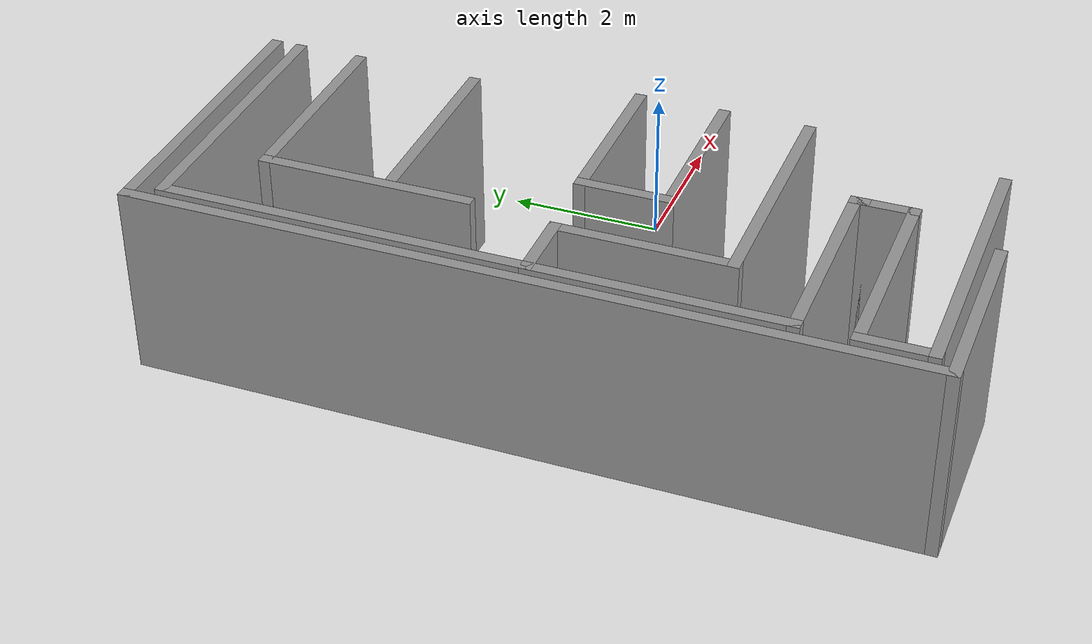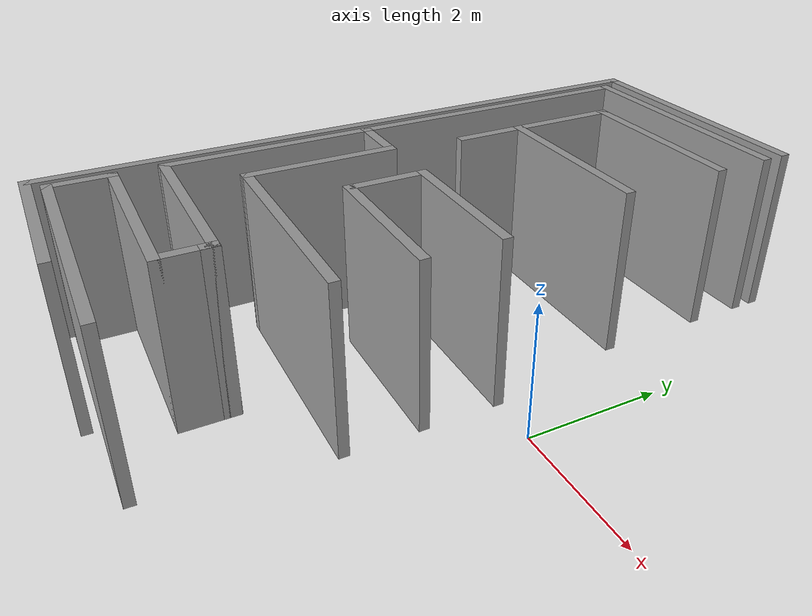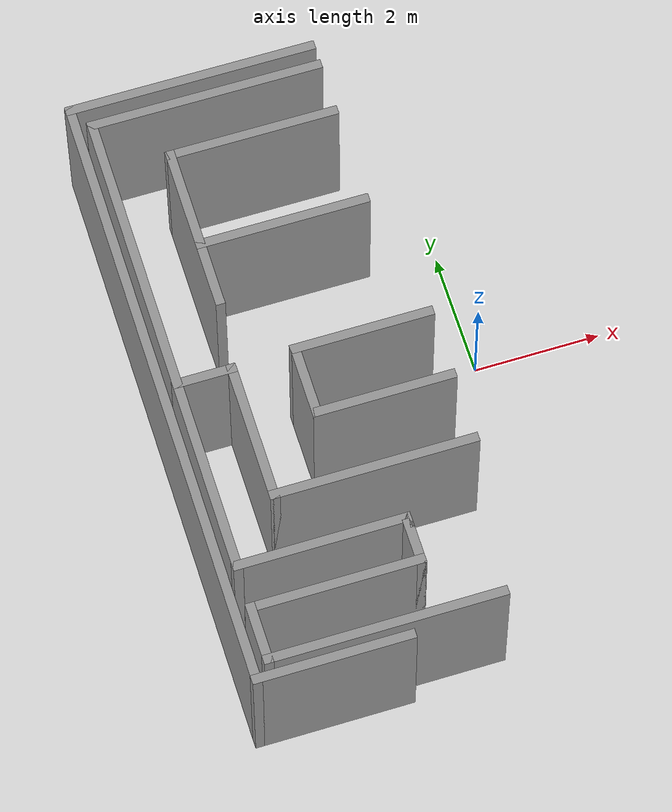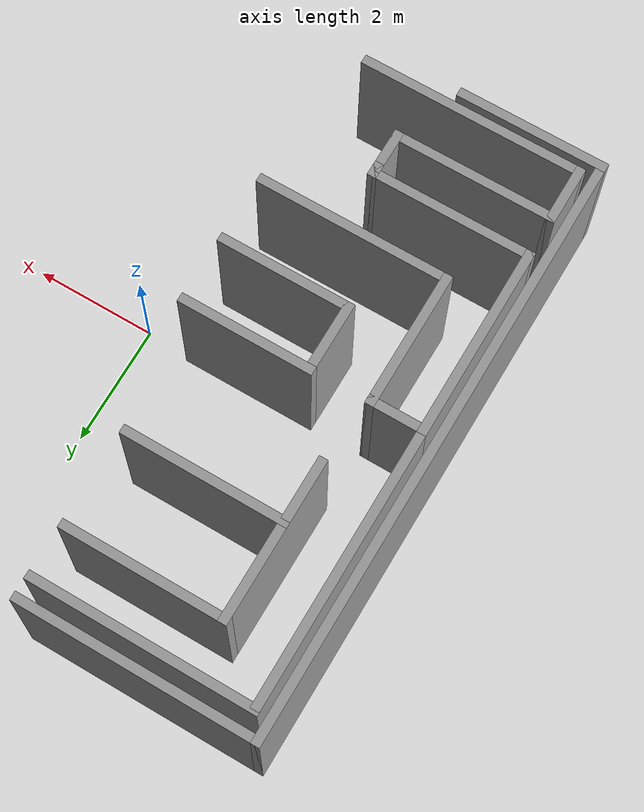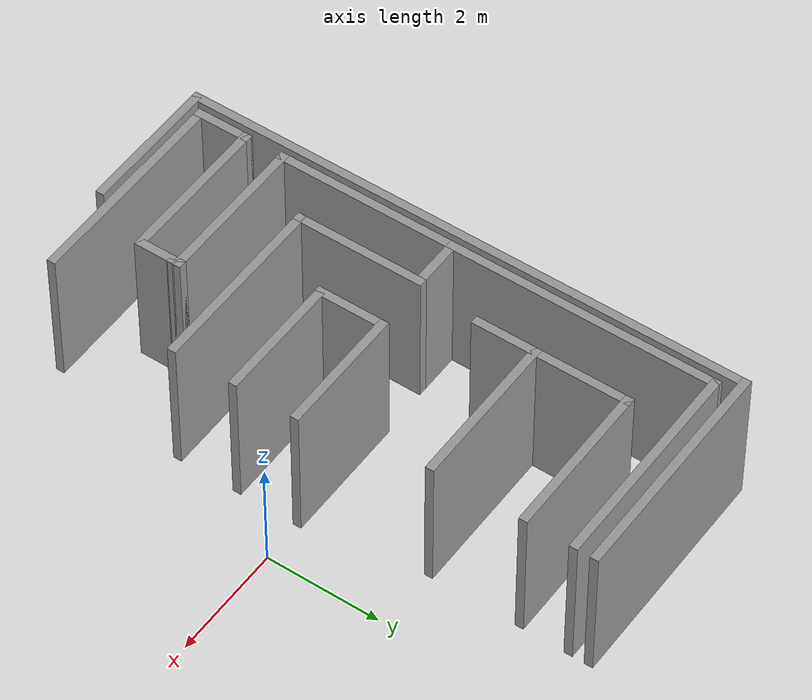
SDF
<sdf version="1.6">
 <model name="maze_final1">
  <link name="Wall_10">
   <pose>-2.95 -4.675 0 0 -0 3.14159</pose>
   <visual name="Wall_10_Visual">
    <pose>0 0 1.25 0 -0 0</pose>
    <geometry><box><size>3.75 0.15 2.5</size></box></geometry>
    <material>
     <script><uri>file://media/materials/scripts/gazebo.material</uri><name>Gazebo/Grey</name></script>
     <ambient>1 1 1 1</ambient>
    </material>
    <meta><layer>0</layer></meta>
   </visual>
   <collision name="Wall_10_Collision">
    <pose>0 0 1.25 0 -0 0</pose>
    <geometry><box><size>3.75 0.15 2.5</size></box></geometry>
    <surface>
     <friction>
      <ode><mu>1</mu><mu2>1</mu2><fdir1>0 0 0</fdir1><slip1>0</slip1><slip2>0</slip2></ode>
      <torsional>
       <coefficient>1</coefficient>
       <patch_radius>0</patch_radius>
       <surface_radius>0</surface_radius>
       <use_patch_radius>1</use_patch_radius>
       <ode><slip>0</slip></ode>
      </torsional>
     </friction>
     <bounce><restitution_coefficient>0</restitution_coefficient><threshold>1e+06</threshold></bounce>
     <contact>
      <collide_without_contact>0</collide_without_contact>
      <collide_without_contact_bitmask>1</collide_without_contact_bitmask>
      <collide_bitmask>1</collide_bitmask>
      <ode>
       <soft_cfm>0</soft_cfm>
       <soft_erp>0.2</soft_erp>
       <kp>1e+13</kp>
       <kd>1</kd>
       <max_vel>0.01</max_vel>
       <min_depth>0</min_depth>
      </ode>
      <bullet>
       <split_impulse>1</split_impulse>
       <split_impulse_penetration_threshold>-0.01</split_impulse_penetration_threshold>
       <soft_cfm>0</soft_cfm>
       <soft_erp>0.2</soft_erp>
       <kp>1e+13</kp>
       <kd>1</kd>
      </bullet>
     </contact>
    </surface>
   </collision>
  </link>
  <link name="Wall_102">
   <pose>-4.75 2.275 0 0 -0 1.5708</pose>
   <visual name="Wall_102_Visual">
    <pose>0 0 1.25 0 -0 0</pose>
    <geometry><box><size>4.75 0.15 2.5</size></box></geometry>
    <material>
     <script><uri>file://media/materials/scripts/gazebo.material</uri><name>Gazebo/Grey</name></script>
     <ambient>1 1 1 1</ambient>
    </material>
    <meta><layer>0</layer></meta>
   </visual>
   <collision name="Wall_102_Collision">
    <pose>0 0 1.25 0 -0 0</pose>
    <geometry><box><size>4.75 0.15 2.5</size></box></geometry>
    <surface>
     <friction>
      <ode><mu>1</mu><mu2>1</mu2><fdir1>0 0 0</fdir1><slip1>0</slip1><slip2>0</slip2></ode>
      <torsional>
       <coefficient>1</coefficient>
       <patch_radius>0</patch_radius>
       <surface_radius>0</surface_radius>
       <use_patch_radius>1</use_patch_radius>
       <ode><slip>0</slip></ode>
      </torsional>
     </friction>
     <bounce><restitution_coefficient>0</restitution_coefficient><threshold>1e+06</threshold></bounce>
     <contact>
      <collide_without_contact>0</collide_without_contact>
      <collide_without_contact_bitmask>1</collide_without_contact_bitmask>
      <collide_bitmask>1</collide_bitmask>
      <ode>
       <soft_cfm>0</soft_cfm>
       <soft_erp>0.2</soft_erp>
       <kp>1e+13</kp>
       <kd>1</kd>
       <max_vel>0.01</max_vel>
       <min_depth>0</min_depth>
      </ode>
      <bullet>
       <split_impulse>1</split_impulse>
       <split_impulse_penetration_threshold>-0.01</split_impulse_penetration_threshold>
       <soft_cfm>0</soft_cfm>
       <soft_erp>0.2</soft_erp>
       <kp>1e+13</kp>
       <kd>1</kd>
      </bullet>
     </contact>
    </surface>
   </collision>
  </link>
  <link name="Wall_103">
   <pose>-2.95 4.575 0 0 -0 0</pose>
   <visual name="Wall_103_Visual">
    <pose>0 0 1.25 0 -0 0</pose>
    <geometry><box><size>3.75 0.15 2.5</size></box></geometry>
    <material>
     <script><uri>file://media/materials/scripts/gazebo.material</uri><name>Gazebo/Grey</name></script>
     <ambient>1 1 1 1</ambient>
    </material>
    <meta><layer>0</layer></meta>
   </visual>
   <collision name="Wall_103_Collision">
    <pose>0 0 1.25 0 -0 0</pose>
    <geometry><box><size>3.75 0.15 2.5</size></box></geometry>
    <surface>
     <friction>
      <ode><mu>1</mu><mu2>1</mu2><fdir1>0 0 0</fdir1><slip1>0</slip1><slip2>0</slip2></ode>
      <torsional>
       <coefficient>1</coefficient>
       <patch_radius>0</patch_radius>
       <surface_radius>0</surface_radius>
       <use_patch_radius>1</use_patch_radius>
       <ode><slip>0</slip></ode>
      </torsional>
     </friction>
     <bounce><restitution_coefficient>0</restitution_coefficient><threshold>1e+06</threshold></bounce>
     <contact>
      <collide_without_contact>0</collide_without_contact>
      <collide_without_contact_bitmask>1</collide_without_contact_bitmask>
      <collide_bitmask>1</collide_bitmask>
      <ode>
       <soft_cfm>0</soft_cfm>
       <soft_erp>0.2</soft_erp>
       <kp>1e+13</kp>
       <kd>1</kd>
       <max_vel>0.01</max_vel>
       <min_depth>0</min_depth>
      </ode>
      <bullet>
       <split_impulse>1</split_impulse>
       <split_impulse_penetration_threshold>-0.01</split_impulse_penetration_threshold>
       <soft_cfm>0</soft_cfm>
       <soft_erp>0.2</soft_erp>
       <kp>1e+13</kp>
       <kd>1</kd>
      </bullet>
     </contact>
    </surface>
   </collision>
  </link>
  <link name="Wall_107">
   <pose>-2.45 3.725 0 0 -0 3.14159</pose>
   <visual name="Wall_107_Visual">
    <pose>0 0 1.25 0 -0 0</pose>
    <geometry><box><size>2.75 0.15 2.5</size></box></geometry>
    <material>
     <script><uri>file://media/materials/scripts/gazebo.material</uri><name>Gazebo/Grey</name></script>
     <ambient>1 1 1 1</ambient>
    </material>
    <meta><layer>0</layer></meta>
   </visual>
   <collision name="Wall_107_Collision">
    <pose>0 0 1.25 0 -0 0</pose>
    <geometry><box><size>2.75 0.15 2.5</size></box></geometry>
    <surface>
     <friction>
      <ode><mu>1</mu><mu2>1</mu2><fdir1>0 0 0</fdir1><slip1>0</slip1><slip2>0</slip2></ode>
      <torsional>
       <coefficient>1</coefficient>
       <patch_radius>0</patch_radius>
       <surface_radius>0</surface_radius>
       <use_patch_radius>1</use_patch_radius>
       <ode><slip>0</slip></ode>
      </torsional>
     </friction>
     <bounce><restitution_coefficient>0</restitution_coefficient><threshold>1e+06</threshold></bounce>
     <contact>
      <collide_without_contact>0</collide_without_contact>
      <collide_without_contact_bitmask>1</collide_without_contact_bitmask>
      <collide_bitmask>1</collide_bitmask>
      <ode>
       <soft_cfm>0</soft_cfm>
       <soft_erp>0.2</soft_erp>
       <kp>1e+13</kp>
       <kd>1</kd>
       <max_vel>0.01</max_vel>
       <min_depth>0</min_depth>
      </ode>
      <bullet>
       <split_impulse>1</split_impulse>
       <split_impulse_penetration_threshold>-0.01</split_impulse_penetration_threshold>
       <soft_cfm>0</soft_cfm>
       <soft_erp>0.2</soft_erp>
       <kp>1e+13</kp>
       <kd>1</kd>
      </bullet>
     </contact>
    </surface>
   </collision>
  </link>
  <link name="Wall_108">
   <pose>-3.75 2.425 0 0 0 -1.5708</pose>
   <visual name="Wall_108_Visual">
    <pose>0 0 1.25 0 -0 0</pose>
    <geometry><box><size>2.75 0.15 2.5</size></box></geometry>
    <material>
     <script><uri>file://media/materials/scripts/gazebo.material</uri><name>Gazebo/Grey</name></script>
     <ambient>1 1 1 1</ambient>
    </material>
    <meta><layer>0</layer></meta>
   </visual>
   <collision name="Wall_108_Collision">
    <pose>0 0 1.25 0 -0 0</pose>
    <geometry><box><size>2.75 0.15 2.5</size></box></geometry>
    <surface>
     <friction>
      <ode><mu>1</mu><mu2>1</mu2><fdir1>0 0 0</fdir1><slip1>0</slip1><slip2>0</slip2></ode>
      <torsional>
       <coefficient>1</coefficient>
       <patch_radius>0</patch_radius>
       <surface_radius>0</surface_radius>
       <use_patch_radius>1</use_patch_radius>
       <ode><slip>0</slip></ode>
      </torsional>
     </friction>
     <bounce><restitution_coefficient>0</restitution_coefficient><threshold>1e+06</threshold></bounce>
     <contact>
      <collide_without_contact>0</collide_without_contact>
      <collide_without_contact_bitmask>1</collide_without_contact_bitmask>
      <collide_bitmask>1</collide_bitmask>
      <ode>
       <soft_cfm>0</soft_cfm>
       <soft_erp>0.2</soft_erp>
       <kp>1e+13</kp>
       <kd>1</kd>
       <max_vel>0.01</max_vel>
       <min_depth>0</min_depth>
      </ode>
      <bullet>
       <split_impulse>1</split_impulse>
       <split_impulse_penetration_threshold>-0.01</split_impulse_penetration_threshold>
       <soft_cfm>0</soft_cfm>
       <soft_erp>0.2</soft_erp>
       <kp>1e+13</kp>
       <kd>1</kd>
      </bullet>
     </contact>
    </surface>
   </collision>
  </link>
  <link name="Wall_11">
   <pose>-4.75 -4.25 0 0 -0 1.5708</pose>
   <visual name="Wall_11_Visual">
    <pose>0 0 1.25 0 -0 0</pose>
    <geometry><box><size>1 0.15 2.5</size></box></geometry>
    <material>
     <script><uri>file://media/materials/scripts/gazebo.material</uri><name>Gazebo/Grey</name></script>
     <ambient>1 1 1 1</ambient>
    </material>
    <meta><layer>0</layer></meta>
   </visual>
   <collision name="Wall_11_Collision">
    <pose>0 0 1.25 0 -0 0</pose>
    <geometry><box><size>1 0.15 2.5</size></box></geometry>
    <surface>
     <friction>
      <ode><mu>1</mu><mu2>1</mu2><fdir1>0 0 0</fdir1><slip1>0</slip1><slip2>0</slip2></ode>
      <torsional>
       <coefficient>1</coefficient>
       <patch_radius>0</patch_radius>
       <surface_radius>0</surface_radius>
       <use_patch_radius>1</use_patch_radius>
       <ode><slip>0</slip></ode>
      </torsional>
     </friction>
     <bounce><restitution_coefficient>0</restitution_coefficient><threshold>1e+06</threshold></bounce>
     <contact>
      <collide_without_contact>0</collide_without_contact>
      <collide_without_contact_bitmask>1</collide_without_contact_bitmask>
      <collide_bitmask>1</collide_bitmask>
      <ode>
       <soft_cfm>0</soft_cfm>
       <soft_erp>0.2</soft_erp>
       <kp>1e+13</kp>
       <kd>1</kd>
       <max_vel>0.01</max_vel>
       <min_depth>0</min_depth>
      </ode>
      <bullet>
       <split_impulse>1</split_impulse>
       <split_impulse_penetration_threshold>-0.01</split_impulse_penetration_threshold>
       <soft_cfm>0</soft_cfm>
       <soft_erp>0.2</soft_erp>
       <kp>1e+13</kp>
       <kd>1</kd>
      </bullet>
     </contact>
    </surface>
   </collision>
  </link>
  <link name="Wall_12">
   <pose>-3.45 -3.825 0 0 -0 0</pose>
   <visual name="Wall_12_Visual">
    <pose>0 0 1.25 0 -0 0</pose>
    <geometry><box><size>2.75 0.15 2.5</size></box></geometry>
    <material>
     <script><uri>file://media/materials/scripts/gazebo.material</uri><name>Gazebo/Grey</name></script>
     <ambient>1 1 1 1</ambient>
    </material>
    <meta><layer>0</layer></meta>
   </visual>
   <collision name="Wall_12_Collision">
    <pose>0 0 1.25 0 -0 0</pose>
    <geometry><box><size>2.75 0.15 2.5</size></box></geometry>
    <surface>
     <friction>
      <ode><mu>1</mu><mu2>1</mu2><fdir1>0 0 0</fdir1><slip1>0</slip1><slip2>0</slip2></ode>
      <torsional>
       <coefficient>1</coefficient>
       <patch_radius>0</patch_radius>
       <surface_radius>0</surface_radius>
       <use_patch_radius>1</use_patch_radius>
       <ode><slip>0</slip></ode>
      </torsional>
     </friction>
     <bounce><restitution_coefficient>0</restitution_coefficient><threshold>1e+06</threshold></bounce>
     <contact>
      <collide_without_contact>0</collide_without_contact>
      <collide_without_contact_bitmask>1</collide_without_contact_bitmask>
      <collide_bitmask>1</collide_bitmask>
      <ode>
       <soft_cfm>0</soft_cfm>
       <soft_erp>0.2</soft_erp>
       <kp>1e+13</kp>
       <kd>1</kd>
       <max_vel>0.01</max_vel>
       <min_depth>0</min_depth>
      </ode>
      <bullet>
       <split_impulse>1</split_impulse>
       <split_impulse_penetration_threshold>-0.01</split_impulse_penetration_threshold>
       <soft_cfm>0</soft_cfm>
       <soft_erp>0.2</soft_erp>
       <kp>1e+13</kp>
       <kd>1</kd>
      </bullet>
     </contact>
    </surface>
   </collision>
  </link>
  <link name="Wall_123">
   <pose>-2.45 2.125 0 0 -0 3.14159</pose>
   <visual name="Wall_123_Visual">
    <pose>0 0 1.25 0 -0 0</pose>
    <geometry><box><size>2.75 0.15 2.5</size></box></geometry>
    <material>
     <script><uri>file://media/materials/scripts/gazebo.material</uri><name>Gazebo/Grey</name></script>
     <ambient>1 1 1 1</ambient>
    </material>
    <meta><layer>0</layer></meta>
   </visual>
   <collision name="Wall_123_Collision">
    <pose>0 0 1.25 0 -0 0</pose>
    <geometry><box><size>2.75 0.15 2.5</size></box></geometry>
    <surface>
     <friction>
      <ode><mu>1</mu><mu2>1</mu2><fdir1>0 0 0</fdir1><slip1>0</slip1><slip2>0</slip2></ode>
      <torsional>
       <coefficient>1</coefficient>
       <patch_radius>0</patch_radius>
       <surface_radius>0</surface_radius>
       <use_patch_radius>1</use_patch_radius>
       <ode><slip>0</slip></ode>
      </torsional>
     </friction>
     <bounce><restitution_coefficient>0</restitution_coefficient><threshold>1e+06</threshold></bounce>
     <contact>
      <collide_without_contact>0</collide_without_contact>
      <collide_without_contact_bitmask>1</collide_without_contact_bitmask>
      <collide_bitmask>1</collide_bitmask>
      <ode>
       <soft_cfm>0</soft_cfm>
       <soft_erp>0.2</soft_erp>
       <kp>1e+13</kp>
       <kd>1</kd>
       <max_vel>0.01</max_vel>
       <min_depth>0</min_depth>
      </ode>
      <bullet>
       <split_impulse>1</split_impulse>
       <split_impulse_penetration_threshold>-0.01</split_impulse_penetration_threshold>
       <soft_cfm>0</soft_cfm>
       <soft_erp>0.2</soft_erp>
       <kp>1e+13</kp>
       <kd>1</kd>
      </bullet>
     </contact>
    </surface>
   </collision>
  </link>
  <link name="Wall_13">
   <pose>-2.15 -3.525 0 0 -0 1.5708</pose>
   <visual name="Wall_13_Visual">
    <pose>0 0 1.25 0 -0 0</pose>
    <geometry><box><size>0.75 0.15 2.5</size></box></geometry>
    <material>
     <script><uri>file://media/materials/scripts/gazebo.material</uri><name>Gazebo/Grey</name></script>
     <ambient>1 1 1 1</ambient>
    </material>
    <meta><layer>0</layer></meta>
   </visual>
   <collision name="Wall_13_Collision">
    <pose>0 0 1.25 0 -0 0</pose>
    <geometry><box><size>0.75 0.15 2.5</size></box></geometry>
    <surface>
     <friction>
      <ode><mu>1</mu><mu2>1</mu2><fdir1>0 0 0</fdir1><slip1>0</slip1><slip2>0</slip2></ode>
      <torsional>
       <coefficient>1</coefficient>
       <patch_radius>0</patch_radius>
       <surface_radius>0</surface_radius>
       <use_patch_radius>1</use_patch_radius>
       <ode><slip>0</slip></ode>
      </torsional>
     </friction>
     <bounce><restitution_coefficient>0</restitution_coefficient><threshold>1e+06</threshold></bounce>
     <contact>
      <collide_without_contact>0</collide_without_contact>
      <collide_without_contact_bitmask>1</collide_without_contact_bitmask>
      <collide_bitmask>1</collide_bitmask>
      <ode>
       <soft_cfm>0</soft_cfm>
       <soft_erp>0.2</soft_erp>
       <kp>1e+13</kp>
       <kd>1</kd>
       <max_vel>0.01</max_vel>
       <min_depth>0</min_depth>
      </ode>
      <bullet>
       <split_impulse>1</split_impulse>
       <split_impulse_penetration_threshold>-0.01</split_impulse_penetration_threshold>
       <soft_cfm>0</soft_cfm>
       <soft_erp>0.2</soft_erp>
       <kp>1e+13</kp>
       <kd>1</kd>
      </bullet>
     </contact>
    </surface>
   </collision>
  </link>
  <link name="Wall_14">
   <pose>-2.15 -3.175 0 0 -0 1.5708</pose>
   <visual name="Wall_14_Visual">
    <pose>0 0 1.25 0 -0 0</pose>
    <geometry><box><size>0.25 0.15 2.5</size></box></geometry>
    <material>
     <script><uri>file://media/materials/scripts/gazebo.material</uri><name>Gazebo/Grey</name></script>
     <ambient>1 1 1 1</ambient>
    </material>
    <meta><layer>0</layer></meta>
   </visual>
   <collision name="Wall_14_Collision">
    <pose>0 0 1.25 0 -0 0</pose>
    <geometry><box><size>0.25 0.15 2.5</size></box></geometry>
    <surface>
     <friction>
      <ode><mu>1</mu><mu2>1</mu2><fdir1>0 0 0</fdir1><slip1>0</slip1><slip2>0</slip2></ode>
      <torsional>
       <coefficient>1</coefficient>
       <patch_radius>0</patch_radius>
       <surface_radius>0</surface_radius>
       <use_patch_radius>1</use_patch_radius>
       <ode><slip>0</slip></ode>
      </torsional>
     </friction>
     <bounce><restitution_coefficient>0</restitution_coefficient><threshold>1e+06</threshold></bounce>
     <contact>
      <collide_without_contact>0</collide_without_contact>
      <collide_without_contact_bitmask>1</collide_without_contact_bitmask>
      <collide_bitmask>1</collide_bitmask>
      <ode>
       <soft_cfm>0</soft_cfm>
       <soft_erp>0.2</soft_erp>
       <kp>1e+13</kp>
       <kd>1</kd>
       <max_vel>0.01</max_vel>
       <min_depth>0</min_depth>
      </ode>
      <bullet>
       <split_impulse>1</split_impulse>
       <split_impulse_penetration_threshold>-0.01</split_impulse_penetration_threshold>
       <soft_cfm>0</soft_cfm>
       <soft_erp>0.2</soft_erp>
       <kp>1e+13</kp>
       <kd>1</kd>
      </bullet>
     </contact>
    </surface>
   </collision>
  </link>
  <link name="Wall_15">
   <pose>-2.15 -3.175 0 0 0 -1.5708</pose>
   <visual name="Wall_15_Visual">
    <pose>0 0 1.25 0 -0 0</pose>
    <geometry><box><size>0.25 0.15 2.5</size></box></geometry>
    <material>
     <script><uri>file://media/materials/scripts/gazebo.material</uri><name>Gazebo/Grey</name></script>
     <ambient>1 1 1 1</ambient>
    </material>
    <meta><layer>0</layer></meta>
   </visual>
   <collision name="Wall_15_Collision">
    <pose>0 0 1.25 0 -0 0</pose>
    <geometry><box><size>0.25 0.15 2.5</size></box></geometry>
    <surface>
     <friction>
      <ode><mu>1</mu><mu2>1</mu2><fdir1>0 0 0</fdir1><slip1>0</slip1><slip2>0</slip2></ode>
      <torsional>
       <coefficient>1</coefficient>
       <patch_radius>0</patch_radius>
       <surface_radius>0</surface_radius>
       <use_patch_radius>1</use_patch_radius>
       <ode><slip>0</slip></ode>
      </torsional>
     </friction>
     <bounce><restitution_coefficient>0</restitution_coefficient><threshold>1e+06</threshold></bounce>
     <contact>
      <collide_without_contact>0</collide_without_contact>
      <collide_without_contact_bitmask>1</collide_without_contact_bitmask>
      <collide_bitmask>1</collide_bitmask>
      <ode>
       <soft_cfm>0</soft_cfm>
       <soft_erp>0.2</soft_erp>
       <kp>1e+13</kp>
       <kd>1</kd>
       <max_vel>0.01</max_vel>
       <min_depth>0</min_depth>
      </ode>
      <bullet>
       <split_impulse>1</split_impulse>
       <split_impulse_penetration_threshold>-0.01</split_impulse_penetration_threshold>
       <soft_cfm>0</soft_cfm>
       <soft_erp>0.2</soft_erp>
       <kp>1e+13</kp>
       <kd>1</kd>
      </bullet>
     </contact>
    </surface>
   </collision>
  </link>
  <link name="Wall_17">
   <pose>-3.45 -3.125 0 0 -0 3.14159</pose>
   <visual name="Wall_17_Visual">
    <pose>0 0 1.25 0 -0 0</pose>
    <geometry><box><size>2.75 0.15 2.5</size></box></geometry>
    <material>
     <script><uri>file://media/materials/scripts/gazebo.material</uri><name>Gazebo/Grey</name></script>
     <ambient>1 1 1 1</ambient>
    </material>
    <meta><layer>0</layer></meta>
   </visual>
   <collision name="Wall_17_Collision">
    <pose>0 0 1.25 0 -0 0</pose>
    <geometry><box><size>2.75 0.15 2.5</size></box></geometry>
    <surface>
     <friction>
      <ode><mu>1</mu><mu2>1</mu2><fdir1>0 0 0</fdir1><slip1>0</slip1><slip2>0</slip2></ode>
      <torsional>
       <coefficient>1</coefficient>
       <patch_radius>0</patch_radius>
       <surface_radius>0</surface_radius>
       <use_patch_radius>1</use_patch_radius>
       <ode><slip>0</slip></ode>
      </torsional>
     </friction>
     <bounce><restitution_coefficient>0</restitution_coefficient><threshold>1e+06</threshold></bounce>
     <contact>
      <collide_without_contact>0</collide_without_contact>
      <collide_without_contact_bitmask>1</collide_without_contact_bitmask>
      <collide_bitmask>1</collide_bitmask>
      <ode>
       <soft_cfm>0</soft_cfm>
       <soft_erp>0.2</soft_erp>
       <kp>1e+13</kp>
       <kd>1</kd>
       <max_vel>0.01</max_vel>
       <min_depth>0</min_depth>
      </ode>
      <bullet>
       <split_impulse>1</split_impulse>
       <split_impulse_penetration_threshold>-0.01</split_impulse_penetration_threshold>
       <soft_cfm>0</soft_cfm>
       <soft_erp>0.2</soft_erp>
       <kp>1e+13</kp>
       <kd>1</kd>
      </bullet>
     </contact>
    </surface>
   </collision>
  </link>
  <link name="Wall_18">
   <pose>-4.75 -1.575 0 0 -0 1.5708</pose>
   <visual name="Wall_18_Visual">
    <pose>0 0 1.25 0 -0 0</pose>
    <geometry><box><size>3.25 0.15 2.5</size></box></geometry>
    <material>
     <script><uri>file://media/materials/scripts/gazebo.material</uri><name>Gazebo/Grey</name></script>
     <ambient>1 1 1 1</ambient>
    </material>
    <meta><layer>0</layer></meta>
   </visual>
   <collision name="Wall_18_Collision">
    <pose>0 0 1.25 0 -0 0</pose>
    <geometry><box><size>3.25 0.15 2.5</size></box></geometry>
    <surface>
     <friction>
      <ode><mu>1</mu><mu2>1</mu2><fdir1>0 0 0</fdir1><slip1>0</slip1><slip2>0</slip2></ode>
      <torsional>
       <coefficient>1</coefficient>
       <patch_radius>0</patch_radius>
       <surface_radius>0</surface_radius>
       <use_patch_radius>1</use_patch_radius>
       <ode><slip>0</slip></ode>
      </torsional>
     </friction>
     <bounce><restitution_coefficient>0</restitution_coefficient><threshold>1e+06</threshold></bounce>
     <contact>
      <collide_without_contact>0</collide_without_contact>
      <collide_without_contact_bitmask>1</collide_without_contact_bitmask>
      <collide_bitmask>1</collide_bitmask>
      <ode>
       <soft_cfm>0</soft_cfm>
       <soft_erp>0.2</soft_erp>
       <kp>1e+13</kp>
       <kd>1</kd>
       <max_vel>0.01</max_vel>
       <min_depth>0</min_depth>
      </ode>
      <bullet>
       <split_impulse>1</split_impulse>
       <split_impulse_penetration_threshold>-0.01</split_impulse_penetration_threshold>
       <soft_cfm>0</soft_cfm>
       <soft_erp>0.2</soft_erp>
       <kp>1e+13</kp>
       <kd>1</kd>
      </bullet>
     </contact>
    </surface>
   </collision>
  </link>
  <link name="Wall_19">
   <pose>-4.325 -0.025 0 0 -0 0</pose>
   <visual name="Wall_19_Visual">
    <pose>0 0 1.25 0 -0 0</pose>
    <geometry><box><size>1 0.15 2.5</size></box></geometry>
    <material>
     <script><uri>file://media/materials/scripts/gazebo.material</uri><name>Gazebo/Grey</name></script>
     <ambient>1 1 1 1</ambient>
    </material>
    <meta><layer>0</layer></meta>
   </visual>
   <collision name="Wall_19_Collision">
    <pose>0 0 1.25 0 -0 0</pose>
    <geometry><box><size>1 0.15 2.5</size></box></geometry>
    <surface>
     <friction>
      <ode><mu>1</mu><mu2>1</mu2><fdir1>0 0 0</fdir1><slip1>0</slip1><slip2>0</slip2></ode>
      <torsional>
       <coefficient>1</coefficient>
       <patch_radius>0</patch_radius>
       <surface_radius>0</surface_radius>
       <use_patch_radius>1</use_patch_radius>
       <ode><slip>0</slip></ode>
      </torsional>
     </friction>
     <bounce><restitution_coefficient>0</restitution_coefficient><threshold>1e+06</threshold></bounce>
     <contact>
      <collide_without_contact>0</collide_without_contact>
      <collide_without_contact_bitmask>1</collide_without_contact_bitmask>
      <collide_bitmask>1</collide_bitmask>
      <ode>
       <soft_cfm>0</soft_cfm>
       <soft_erp>0.2</soft_erp>
       <kp>1e+13</kp>
       <kd>1</kd>
       <max_vel>0.01</max_vel>
       <min_depth>0</min_depth>
      </ode>
      <bullet>
       <split_impulse>1</split_impulse>
       <split_impulse_penetration_threshold>-0.01</split_impulse_penetration_threshold>
       <soft_cfm>0</soft_cfm>
       <soft_erp>0.2</soft_erp>
       <kp>1e+13</kp>
       <kd>1</kd>
      </bullet>
     </contact>
    </surface>
   </collision>
  </link>
  <link name="Wall_2">
   <pose>-3.825 -4.925 0 0 -0 3.14159</pose>
   <visual name="Wall_2_Visual">
    <pose>0 0 1.25 0 -0 0</pose>
    <geometry><box><size>2.5 0.15 2.5</size></box></geometry>
    <material>
     <script><uri>file://media/materials/scripts/gazebo.material</uri><name>Gazebo/Grey</name></script>
     <ambient>1 1 1 1</ambient>
    </material>
    <meta><layer>0</layer></meta>
   </visual>
   <collision name="Wall_2_Collision">
    <pose>0 0 1.25 0 -0 0</pose>
    <geometry><box><size>2.5 0.15 2.5</size></box></geometry>
    <surface>
     <friction>
      <ode><mu>1</mu><mu2>1</mu2><fdir1>0 0 0</fdir1><slip1>0</slip1><slip2>0</slip2></ode>
      <torsional>
       <coefficient>1</coefficient>
       <patch_radius>0</patch_radius>
       <surface_radius>0</surface_radius>
       <use_patch_radius>1</use_patch_radius>
       <ode><slip>0</slip></ode>
      </torsional>
     </friction>
     <bounce><restitution_coefficient>0</restitution_coefficient><threshold>1e+06</threshold></bounce>
     <contact>
      <collide_without_contact>0</collide_without_contact>
      <collide_without_contact_bitmask>1</collide_without_contact_bitmask>
      <collide_bitmask>1</collide_bitmask>
      <ode>
       <soft_cfm>0</soft_cfm>
       <soft_erp>0.2</soft_erp>
       <kp>1e+13</kp>
       <kd>1</kd>
       <max_vel>0.01</max_vel>
       <min_depth>0</min_depth>
      </ode>
      <bullet>
       <split_impulse>1</split_impulse>
       <split_impulse_penetration_threshold>-0.01</split_impulse_penetration_threshold>
       <soft_cfm>0</soft_cfm>
       <soft_erp>0.2</soft_erp>
       <kp>1e+13</kp>
       <kd>1</kd>
      </bullet>
     </contact>
    </surface>
   </collision>
  </link>
  <link name="Wall_20">
   <pose>-3.9 -1.10778 0 0 0 -1.5708</pose>
   <visual name="Wall_20_Visual">
    <pose>0 0 1.25 0 -0 0</pose>
    <geometry><box><size>2.31556 0.15 2.5</size></box></geometry>
    <material>
     <script><uri>file://media/materials/scripts/gazebo.material</uri><name>Gazebo/Grey</name></script>
     <ambient>1 1 1 1</ambient>
    </material>
    <meta><layer>0</layer></meta>
   </visual>
   <collision name="Wall_20_Collision">
    <pose>0 0 1.25 0 -0 0</pose>
    <geometry><box><size>2.31556 0.15 2.5</size></box></geometry>
    <surface>
     <friction>
      <ode><mu>1</mu><mu2>1</mu2><fdir1>0 0 0</fdir1><slip1>0</slip1><slip2>0</slip2></ode>
      <torsional>
       <coefficient>1</coefficient>
       <patch_radius>0</patch_radius>
       <surface_radius>0</surface_radius>
       <use_patch_radius>1</use_patch_radius>
       <ode><slip>0</slip></ode>
      </torsional>
     </friction>
     <bounce><restitution_coefficient>0</restitution_coefficient><threshold>1e+06</threshold></bounce>
     <contact>
      <collide_without_contact>0</collide_without_contact>
      <collide_without_contact_bitmask>1</collide_without_contact_bitmask>
      <collide_bitmask>1</collide_bitmask>
      <ode>
       <soft_cfm>0</soft_cfm>
       <soft_erp>0.2</soft_erp>
       <kp>1e+13</kp>
       <kd>1</kd>
       <max_vel>0.01</max_vel>
       <min_depth>0</min_depth>
      </ode>
      <bullet>
       <split_impulse>1</split_impulse>
       <split_impulse_penetration_threshold>-0.01</split_impulse_penetration_threshold>
       <soft_cfm>0</soft_cfm>
       <soft_erp>0.2</soft_erp>
       <kp>1e+13</kp>
       <kd>1</kd>
      </bullet>
     </contact>
    </surface>
   </collision>
  </link>
  <link name="Wall_21">
   <pose>-2.35 -2.19056 0 0 -0 0</pose>
   <visual name="Wall_21_Visual">
    <pose>0 0 1.25 0 -0 0</pose>
    <geometry><box><size>3.25 0.15 2.5</size></box></geometry>
    <material>
     <script><uri>file://media/materials/scripts/gazebo.material</uri><name>Gazebo/Grey</name></script>
     <ambient>1 1 1 1</ambient>
    </material>
    <meta><layer>0</layer></meta>
   </visual>
   <collision name="Wall_21_Collision">
    <pose>0 0 1.25 0 -0 0</pose>
    <geometry><box><size>3.25 0.15 2.5</size></box></geometry>
    <surface>
     <friction>
      <ode><mu>1</mu><mu2>1</mu2><fdir1>0 0 0</fdir1><slip1>0</slip1><slip2>0</slip2></ode>
      <torsional>
       <coefficient>1</coefficient>
       <patch_radius>0</patch_radius>
       <surface_radius>0</surface_radius>
       <use_patch_radius>1</use_patch_radius>
       <ode><slip>0</slip></ode>
      </torsional>
     </friction>
     <bounce><restitution_coefficient>0</restitution_coefficient><threshold>1e+06</threshold></bounce>
     <contact>
      <collide_without_contact>0</collide_without_contact>
      <collide_without_contact_bitmask>1</collide_without_contact_bitmask>
      <collide_bitmask>1</collide_bitmask>
      <ode>
       <soft_cfm>0</soft_cfm>
       <soft_erp>0.2</soft_erp>
       <kp>1e+13</kp>
       <kd>1</kd>
       <max_vel>0.01</max_vel>
       <min_depth>0</min_depth>
      </ode>
      <bullet>
       <split_impulse>1</split_impulse>
       <split_impulse_penetration_threshold>-0.01</split_impulse_penetration_threshold>
       <soft_cfm>0</soft_cfm>
       <soft_erp>0.2</soft_erp>
       <kp>1e+13</kp>
       <kd>1</kd>
      </bullet>
     </contact>
    </surface>
   </collision>
  </link>
  <link name="Wall_28">
   <pose>-1.85 0.009444 0 0 -0 3.14159</pose>
   <visual name="Wall_28_Visual">
    <pose>0 0 1.25 0 -0 0</pose>
    <geometry><box><size>2.25 0.15 2.5</size></box></geometry>
    <material>
     <script><uri>file://media/materials/scripts/gazebo.material</uri><name>Gazebo/Grey</name></script>
     <ambient>1 1 1 1</ambient>
    </material>
    <meta><layer>0</layer></meta>
   </visual>
   <collision name="Wall_28_Collision">
    <pose>0 0 1.25 0 -0 0</pose>
    <geometry><box><size>2.25 0.15 2.5</size></box></geometry>
    <surface>
     <friction>
      <ode><mu>1</mu><mu2>1</mu2><fdir1>0 0 0</fdir1><slip1>0</slip1><slip2>0</slip2></ode>
      <torsional>
       <coefficient>1</coefficient>
       <patch_radius>0</patch_radius>
       <surface_radius>0</surface_radius>
       <use_patch_radius>1</use_patch_radius>
       <ode><slip>0</slip></ode>
      </torsional>
     </friction>
     <bounce><restitution_coefficient>0</restitution_coefficient><threshold>1e+06</threshold></bounce>
     <contact>
      <collide_without_contact>0</collide_without_contact>
      <collide_without_contact_bitmask>1</collide_without_contact_bitmask>
      <collide_bitmask>1</collide_bitmask>
      <ode>
       <soft_cfm>0</soft_cfm>
       <soft_erp>0.2</soft_erp>
       <kp>1e+13</kp>
       <kd>1</kd>
       <max_vel>0.01</max_vel>
       <min_depth>0</min_depth>
      </ode>
      <bullet>
       <split_impulse>1</split_impulse>
       <split_impulse_penetration_threshold>-0.01</split_impulse_penetration_threshold>
       <soft_cfm>0</soft_cfm>
       <soft_erp>0.2</soft_erp>
       <kp>1e+13</kp>
       <kd>1</kd>
      </bullet>
     </contact>
    </surface>
   </collision>
  </link>
  <link name="Wall_29">
   <pose>-2.9 -0.540556 0 0 0 -1.5708</pose>
   <visual name="Wall_29_Visual">
    <pose>0 0 1.25 0 -0 0</pose>
    <geometry><box><size>1.25 0.15 2.5</size></box></geometry>
    <material>
     <script><uri>file://media/materials/scripts/gazebo.material</uri><name>Gazebo/Grey</name></script>
     <ambient>1 1 1 1</ambient>
    </material>
    <meta><layer>0</layer></meta>
   </visual>
   <collision name="Wall_29_Collision">
    <pose>0 0 1.25 0 -0 0</pose>
    <geometry><box><size>1.25 0.15 2.5</size></box></geometry>
    <surface>
     <friction>
      <ode><mu>1</mu><mu2>1</mu2><fdir1>0 0 0</fdir1><slip1>0</slip1><slip2>0</slip2></ode>
      <torsional>
       <coefficient>1</coefficient>
       <patch_radius>0</patch_radius>
       <surface_radius>0</surface_radius>
       <use_patch_radius>1</use_patch_radius>
       <ode><slip>0</slip></ode>
      </torsional>
     </friction>
     <bounce><restitution_coefficient>0</restitution_coefficient><threshold>1e+06</threshold></bounce>
     <contact>
      <collide_without_contact>0</collide_without_contact>
      <collide_without_contact_bitmask>1</collide_without_contact_bitmask>
      <collide_bitmask>1</collide_bitmask>
      <ode>
       <soft_cfm>0</soft_cfm>
       <soft_erp>0.2</soft_erp>
       <kp>1e+13</kp>
       <kd>1</kd>
       <max_vel>0.01</max_vel>
       <min_depth>0</min_depth>
      </ode>
      <bullet>
       <split_impulse>1</split_impulse>
       <split_impulse_penetration_threshold>-0.01</split_impulse_penetration_threshold>
       <soft_cfm>0</soft_cfm>
       <soft_erp>0.2</soft_erp>
       <kp>1e+13</kp>
       <kd>1</kd>
      </bullet>
     </contact>
    </surface>
   </collision>
  </link>
  <link name="Wall_3">
   <pose>-5 0 0 0 -0 1.5708</pose>
   <visual name="Wall_3_Visual">
    <pose>0 0 1.25 0 -0 0</pose>
    <geometry><box><size>10 0.15 2.5</size></box></geometry>
    <material>
     <script><uri>file://media/materials/scripts/gazebo.material</uri><name>Gazebo/Grey</name></script>
     <ambient>1 1 1 1</ambient>
    </material>
    <meta><layer>0</layer></meta>
   </visual>
   <collision name="Wall_3_Collision">
    <pose>0 0 1.25 0 -0 0</pose>
    <geometry><box><size>10 0.15 2.5</size></box></geometry>
    <surface>
     <friction>
      <ode><mu>1</mu><mu2>1</mu2><fdir1>0 0 0</fdir1><slip1>0</slip1><slip2>0</slip2></ode>
      <torsional>
       <coefficient>1</coefficient>
       <patch_radius>0</patch_radius>
       <surface_radius>0</surface_radius>
       <use_patch_radius>1</use_patch_radius>
       <ode><slip>0</slip></ode>
      </torsional>
     </friction>
     <bounce><restitution_coefficient>0</restitution_coefficient><threshold>1e+06</threshold></bounce>
     <contact>
      <collide_without_contact>0</collide_without_contact>
      <collide_without_contact_bitmask>1</collide_without_contact_bitmask>
      <collide_bitmask>1</collide_bitmask>
      <ode>
       <soft_cfm>0</soft_cfm>
       <soft_erp>0.2</soft_erp>
       <kp>1e+13</kp>
       <kd>1</kd>
       <max_vel>0.01</max_vel>
       <min_depth>0</min_depth>
      </ode>
      <bullet>
       <split_impulse>1</split_impulse>
       <split_impulse_penetration_threshold>-0.01</split_impulse_penetration_threshold>
       <soft_cfm>0</soft_cfm>
       <soft_erp>0.2</soft_erp>
       <kp>1e+13</kp>
       <kd>1</kd>
      </bullet>
     </contact>
    </surface>
   </collision>
  </link>
  <link name="Wall_30">
   <pose>-1.85 -1.09056 0 0 -0 0</pose>
   <visual name="Wall_30_Visual">
    <pose>0 0 1.25 0 -0 0</pose>
    <geometry><box><size>2.25 0.15 2.5</size></box></geometry>
    <material>
     <script><uri>file://media/materials/scripts/gazebo.material</uri><name>Gazebo/Grey</name></script>
     <ambient>1 1 1 1</ambient>
    </material>
    <meta><layer>0</layer></meta>
   </visual>
   <collision name="Wall_30_Collision">
    <pose>0 0 1.25 0 -0 0</pose>
    <geometry><box><size>2.25 0.15 2.5</size></box></geometry>
    <surface>
     <friction>
      <ode><mu>1</mu><mu2>1</mu2><fdir1>0 0 0</fdir1><slip1>0</slip1><slip2>0</slip2></ode>
      <torsional>
       <coefficient>1</coefficient>
       <patch_radius>0</patch_radius>
       <surface_radius>0</surface_radius>
       <use_patch_radius>1</use_patch_radius>
       <ode><slip>0</slip></ode>
      </torsional>
     </friction>
     <bounce><restitution_coefficient>0</restitution_coefficient><threshold>1e+06</threshold></bounce>
     <contact>
      <collide_without_contact>0</collide_without_contact>
      <collide_without_contact_bitmask>1</collide_without_contact_bitmask>
      <collide_bitmask>1</collide_bitmask>
      <ode>
       <soft_cfm>0</soft_cfm>
       <soft_erp>0.2</soft_erp>
       <kp>1e+13</kp>
       <kd>1</kd>
       <max_vel>0.01</max_vel>
       <min_depth>0</min_depth>
      </ode>
      <bullet>
       <split_impulse>1</split_impulse>
       <split_impulse_penetration_threshold>-0.01</split_impulse_penetration_threshold>
       <soft_cfm>0</soft_cfm>
       <soft_erp>0.2</soft_erp>
       <kp>1e+13</kp>
       <kd>1</kd>
      </bullet>
     </contact>
    </surface>
   </collision>
  </link>
  <link name="Wall_4">
   <pose>-3.075 4.925 0 0 -0 0</pose>
   <visual name="Wall_4_Visual">
    <pose>0 0 1.25 0 -0 0</pose>
    <geometry><box><size>4 0.15 2.5</size></box></geometry>
    <material>
     <script><uri>file://media/materials/scripts/gazebo.material</uri><name>Gazebo/Grey</name></script>
     <ambient>1 1 1 1</ambient>
    </material>
    <meta><layer>0</layer></meta>
   </visual>
   <collision name="Wall_4_Collision">
    <pose>0 0 1.25 0 -0 0</pose>
    <geometry><box><size>4 0.15 2.5</size></box></geometry>
    <surface>
     <friction>
      <ode><mu>1</mu><mu2>1</mu2><fdir1>0 0 0</fdir1><slip1>0</slip1><slip2>0</slip2></ode>
      <torsional>
       <coefficient>1</coefficient>
       <patch_radius>0</patch_radius>
       <surface_radius>0</surface_radius>
       <use_patch_radius>1</use_patch_radius>
       <ode><slip>0</slip></ode>
      </torsional>
     </friction>
     <bounce><restitution_coefficient>0</restitution_coefficient><threshold>1e+06</threshold></bounce>
     <contact>
      <collide_without_contact>0</collide_without_contact>
      <collide_without_contact_bitmask>1</collide_without_contact_bitmask>
      <collide_bitmask>1</collide_bitmask>
      <ode>
       <soft_cfm>0</soft_cfm>
       <soft_erp>0.2</soft_erp>
       <kp>1e+13</kp>
       <kd>1</kd>
       <max_vel>0.01</max_vel>
       <min_depth>0</min_depth>
      </ode>
      <bullet>
       <split_impulse>1</split_impulse>
       <split_impulse_penetration_threshold>-0.01</split_impulse_penetration_threshold>
       <soft_cfm>0</soft_cfm>
       <soft_erp>0.2</soft_erp>
       <kp>1e+13</kp>
       <kd>1</kd>
      </bullet>
     </contact>
    </surface>
   </collision>
  </link>
  <static>1</static>
 </model>
</sdf>
